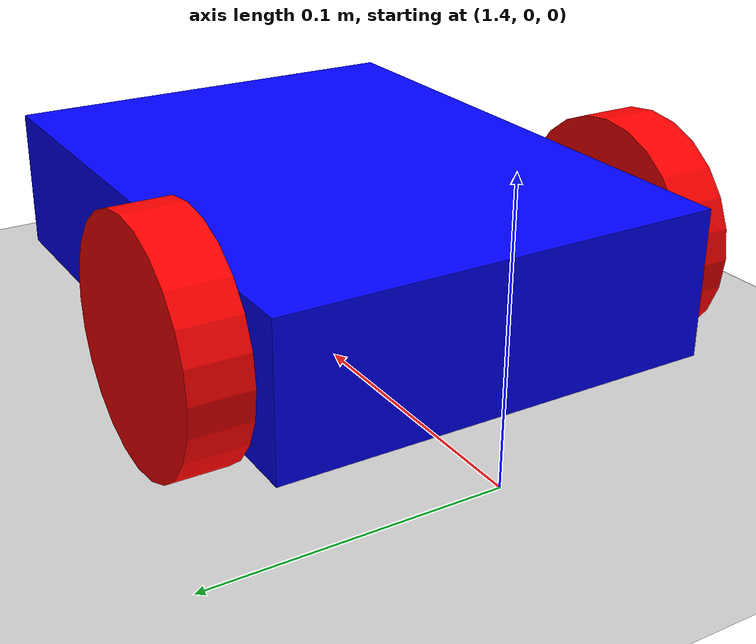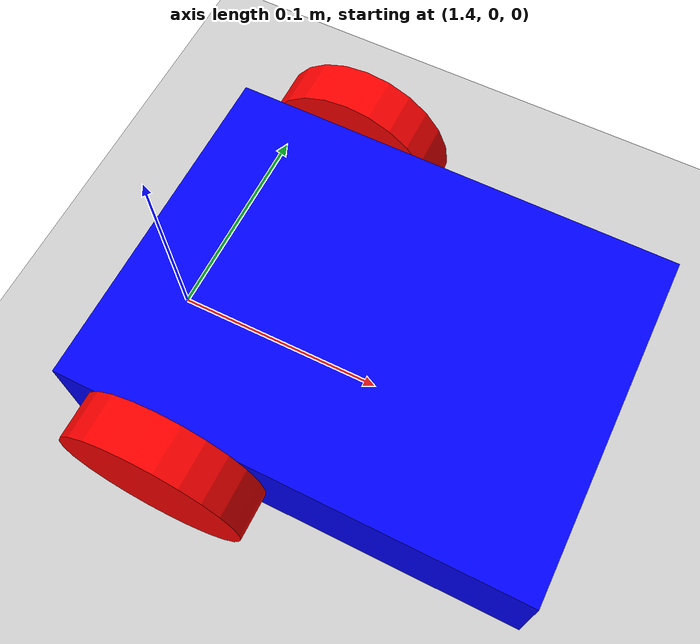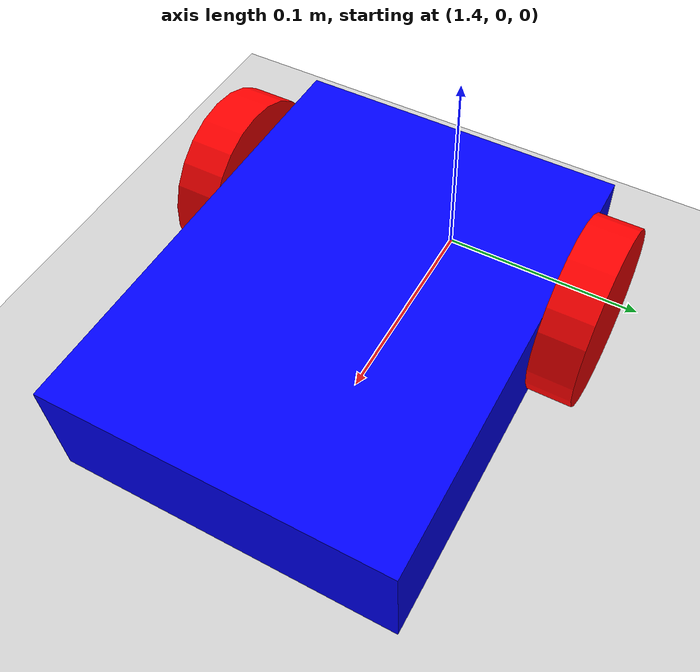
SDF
<?xml version="1.0" ?>
<sdf version="1.10">
    <world name="car_world">
        <physics name="1ms" type="ignored">
            <max_step_size>0.001</max_step_size>
            <real_time_factor>1.0</real_time_factor>
        </physics>
        <plugin
            filename="gz-sim-physics-system"
            name="gz::sim::systems::Physics">
        </plugin>
        <plugin
            filename="gz-sim-user-commands-system"
            name="gz::sim::systems::UserCommands">
        </plugin>
        <plugin
            filename="gz-sim-scene-broadcaster-system"
            name="gz::sim::systems::SceneBroadcaster">
        </plugin>

        <light type="directional" name="sun">
            <cast_shadows>true</cast_shadows>
            <pose>0 0 10 0 0 0</pose>
            <diffuse>0.8 0.8 0.8 1</diffuse>
            <specular>0.2 0.2 0.2 1</specular>
            <attenuation>
                <range>1000</range>
                <constant>0.9</constant>
                <linear>0.01</linear>
                <quadratic>0.001</quadratic>
            </attenuation>
            <direction>-0.5 0.1 -0.9</direction>
        </light>
        <plugin filename="gz-sim-imu-system"
            name="gz::sim::systems::Imu">
        </plugin>
        <plugin
            filename="gz-sim-sensors-system"
            name="gz::sim::systems::Sensors">
            <render_engine>ogre2</render_engine>
        </plugin>

        <model name="ground_plane">
            <static>true</static>
            <link name="link">
                <collision name="collision">
                <geometry>
                    <plane>
                    <normal>0 0 1</normal>
                    </plane>
                </geometry>
                </collision>
                <visual name="visual">
                <geometry>
                    <plane>
                    <normal>0 0 1</normal>
                    <size>100 100</size>
                    </plane>
                </geometry>
                <material>
                    <ambient>0.8 0.8 0.8 1</ambient>
                    <diffuse>0.8 0.8 0.8 1</diffuse>
                    <specular>0.8 0.8 0.8 1</specular>
                </material>
                </visual>
            </link>
        </model>
        <model name='vehicle_blue' canonical_link='chassis'>
            <pose relative_to='world'>1 0 0 0 0 0</pose>
            <link name='chassis'>
                <pose relative_to='__model__'>0.5 0 0.05 0 0 0</pose>
                <inertial> <!--inertial properties of the link mass, inertia matix-->
                    <mass>1.14395</mass>
                    <inertia>
                        <ixx>0.002145</ixx>
                        <ixy>0</ixy>
                        <ixz>0</ixz>
                        <iyy>0.003813</iyy>
                        <iyz>0</iyz>
                        <izz>0.005958</izz>
                    </inertia>
                </inertial>
                <visual name='visual'>
                    <geometry>
                        <box>
                            <size>0.20 0.15 0.05</size>
                        </box>
                    </geometry>
                    <!--let's add color to our link-->
                    <material>
                        <ambient>0.0 0.0 1.0 1</ambient>
                        <diffuse>0.0 0.0 1.0 1</diffuse>
                        <specular>0.0 0.0 1.0 1</specular>
                    </material>
                </visual>
                <collision name='collision'>
                    <geometry>
                        <box>
                            <size>0.20 0.15 0.05</size>
                        </box>
                    </geometry>
                </collision>
                <sensor name="imu_sensor" type="imu">
                    <pose relative_to='imu_frame'>0 0 0 0 0 0</pose>
                    <always_on>1</always_on>
                    <update_rate>1</update_rate>
                    <visualize>true</visualize>
                    <topic>imu</topic>
                </sensor>
                <sensor name='gpu_lidar' type='gpu_lidar'>"
                    <pose relative_to='lidar_frame'>0 0 0 0 0 0</pose>
                    <topic>lidar</topic>
                    <update_rate>10</update_rate>
                    <ray>
                        <scan>
                            <horizontal>
                                <samples>640</samples>
                                <resolution>1</resolution>
                                <min_angle>-1.396263</min_angle>
                                <max_angle>1.396263</max_angle>
                            </horizontal>
                            <vertical>
                                <samples>1</samples>
                                <resolution>0.01</resolution>
                                <min_angle>0</min_angle>
                                <max_angle>0</max_angle>
                            </vertical>
                        </scan>
                        <range>
                            <min>0.08</min>
                            <max>10.0</max>
                            <resolution>0.01</resolution>
                        </range>
                    </ray>
                    <always_on>
                                1</always_on>
                    <visualize>true</visualize>
                </sensor>
            </link>
            <link name='left_wheel'>
                <pose relative_to="chassis">-0.05 0.085 0 -1.5707 0 0</pose>
                <inertial>
                    <mass>1</mass>
                    <inertia>
                        <ixx>0.000433</ixx>
                        <ixy>0</ixy>
                        <ixz>0</ixz>
                        <iyy>0.000433</iyy>
                        <iyz>0</iyz>
                        <izz>0.0008</izz>
                    </inertia>
                </inertial>
                <visual name='visual'>
                    <geometry>
                        <cylinder>
                            <radius>0.04</radius>
                            <length>0.02</length>
                        </cylinder>
                    </geometry>
                    <material>
                        <ambient>1.0 0.0 0.0 1</ambient>
                        <diffuse>1.0 0.0 0.0 1</diffuse>
                        <specular>1.0 0.0 0.0 1</specular>
                    </material>
                </visual>
                <collision name='collision'>
                    <geometry>
                        <cylinder>
                            <radius>0.04</radius>
                            <length>0.02</length>
                        </cylinder>
                    </geometry>
                </collision>
            </link>
            <!--The same as left wheel but with different position-->
            <link name='right_wheel'>
                <pose relative_to="chassis">-0.05 -0.085 0 -1.5707 0 0</pose> <!--angles are in radian-->
                <inertial>
                    <mass>1</mass>
                    <inertia>
                        <ixx>0.000433</ixx>
                        <ixy>0</ixy>
                        <ixz>0</ixz>
                        <iyy>0.000433</iyy>
                        <iyz>0</iyz>
                        <izz>0.0008</izz>
                    </inertia>
                </inertial>
                <visual name='visual'>
                    <geometry>
                        <cylinder>
                            <radius>0.04</radius>
                            <length>0.02</length>
                        </cylinder>
                    </geometry>
                    <material>
                        <ambient>1.0 0.0 0.0 1</ambient>
                        <diffuse>1.0 0.0 0.0 1</diffuse>
                        <specular>1.0 0.0 0.0 1</specular>
                    </material>
                </visual>
                <collision name='collision'>
                    <geometry>
                        <cylinder>
                            <radius>0.04</radius>
                            <length>0.02</length>
                        </cylinder>
                    </geometry>
                </collision>
            </link>
            <frame name="caster_frame" attached_to='chassis'>
                <pose>0.08 0 -0.02 0 0 0</pose>
            </frame>
            <!--caster wheel-->
            <link name='caster'>
                <pose relative_to='caster_frame'/>
                <inertial>
                    <mass>1</mass>
                    <inertia>
                        <ixx>0.00016</ixx>
                        <ixy>0</ixy>
                        <ixz>0</ixz>
                        <iyy>0.00016</iyy>
                        <iyz>0</iyz>
                        <izz>0.00016</izz>
                    </inertia>
                </inertial>
                <visual name='visual'>
                    <geometry>
                        <sphere>
                            <radius>0.02</radius>
                        </sphere>
                    </geometry>
                    <material>
                        <ambient>0.0 1 0.0 1</ambient>
                        <diffuse>0.0 1 0.0 1</diffuse>
                        <specular>0.0 1 0.0 1</specular>
                    </material>
                </visual>
                <collision name='collision'>
                    <geometry>
                        <sphere>
                            <radius>0.02</radius>
                        </sphere>
                    </geometry>
                </collision>
            </link>
            <frame name='imu_frame' attached_to='chassis'>
                <pose>-0.05 0 0 0 0 0</pose>
            </frame>
            <frame name="lidar_frame" attached_to='chassis'>
                <pose>0 0 0.05 0 0 0</pose>
            </frame>
            <joint name='left_wheel_joint' type='revolute'>
                <pose relative_to='left_wheel'/>
                <parent>chassis</parent>
                <child>left_wheel</child>
                <axis>
                    <xyz expressed_in='__model__'>0 1 0</xyz> <!--can be defined as any frame or even arbitrary frames-->
                    <limit>
                        <lower>-1.79769e+308</lower>    <!--negative infinity-->
                        <upper>1.79769e+308</upper>     <!--positive infinity-->
                    </limit>
                </axis>
            </joint>
            <joint name='right_wheel_joint' type='revolute'>
                <pose relative_to='right_wheel'/>
                <parent>chassis</parent>
                <child>right_wheel</child>
                <axis>
                    <xyz expressed_in='__model__'>0 1 0</xyz>
                    <limit>
                        <lower>-1.79769e+308</lower>    <!--negative infinity-->
                        <upper>1.79769e+308</upper>     <!--positive infinity-->
                    </limit>
                </axis>
            </joint>
            <joint name='imu_joint' type='fixed'>
                <parent>chassis</parent>
                <child>caster</child>
            </joint>
            <plugin
                filename="gz-sim-diff-drive-system"
                name="gz::sim::systems::DiffDrive">
                <left_joint>left_wheel_joint</left_joint>
                <right_joint>right_wheel_joint</right_joint>
                <wheel_separation>0.17</wheel_separation>
                <wheel_radius>0.04</wheel_radius>
                <odom_publish_frequency>1</odom_publish_frequency>
                <topic>cmd_vel</topic>
            </plugin>
            <!-- Moving Forward-->
            <plugin filename="gz-sim-triggered-publisher-system"
                name="gz::sim::systems::TriggeredPublisher">
                <input type="gz.msgs.Int32" topic="/keyboard/keypress">
                    <match field="data">16777235</match>
                </input>
                <output type="gz.msgs.Twist" topic="/cmd_vel">
                    linear: {x: 0.5}, angular: {z: 0.0}
                </output>
            </plugin>
            <!-- Moving Backward-->
            <plugin filename="gz-sim-triggered-publisher-system"
                name="gz::sim::systems::TriggeredPublisher">
                <input type="gz.msgs.Int32" topic="/keyboard/keypress">
                    <match field="data">16777237</match>
                </input>
                <output type="gz.msgs.Twist" topic="/cmd_vel">
                    linear: {x: -0.5}, angular: {z: 0.0}
                </output>
            </plugin>
            <!-- Moving Left-->
            <plugin filename="gz-sim-triggered-publisher-system"
                name="gz::sim::systems::TriggeredPublisher">
                <input type="gz.msgs.Int32" topic="/keyboard/keypress">
                    <match field="data">16777234</match>
                </input>
                <output type="gz.msgs.Twist" topic="/cmd_vel">
                    linear: {x: 0.0}, angular: {z: 0.5}
                </output>
            </plugin>
            <!-- Moving Right-->
            <plugin filename="gz-sim-triggered-publisher-system"
                name="gz::sim::systems::TriggeredPublisher">
                <input type="gz.msgs.Int32" topic="/keyboard/keypress">
                    <match field="data">16777236</match>
                </input>
                <output type="gz.msgs.Twist" topic="/cmd_vel">
                    linear: {x: 0.0}, angular: {z: -0.5}
                </output>
            </plugin>

    </model>

    </world>
</sdf>
